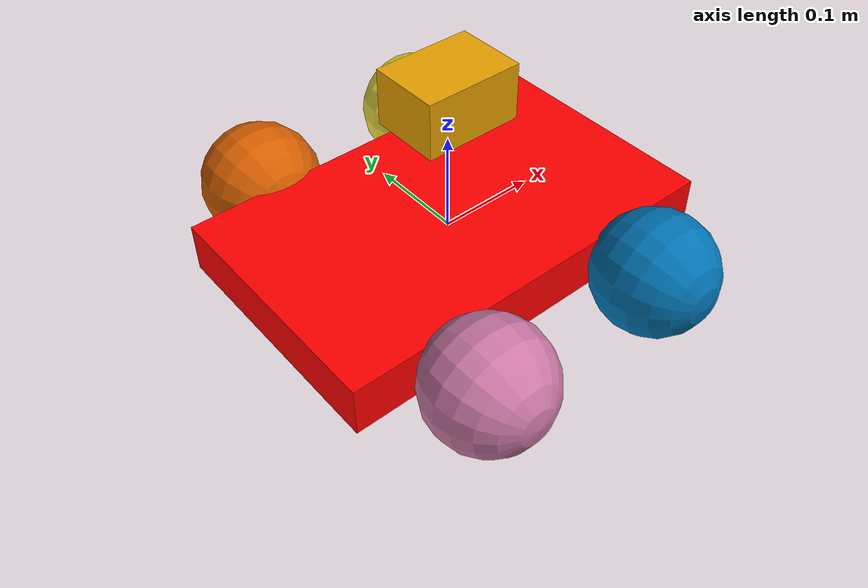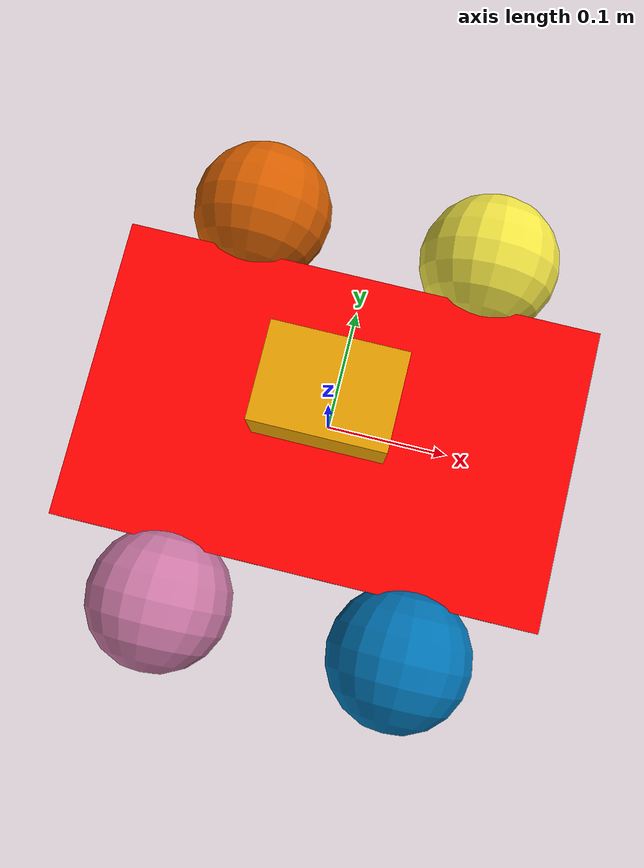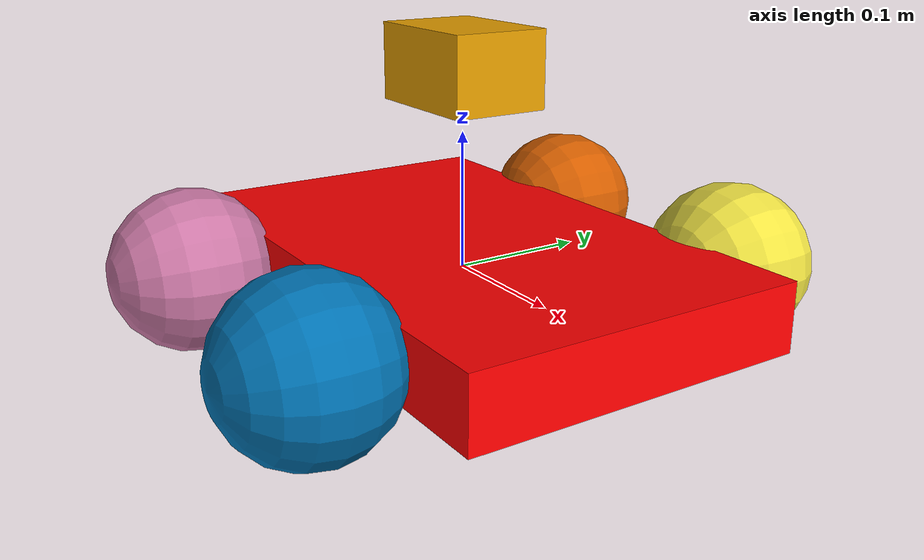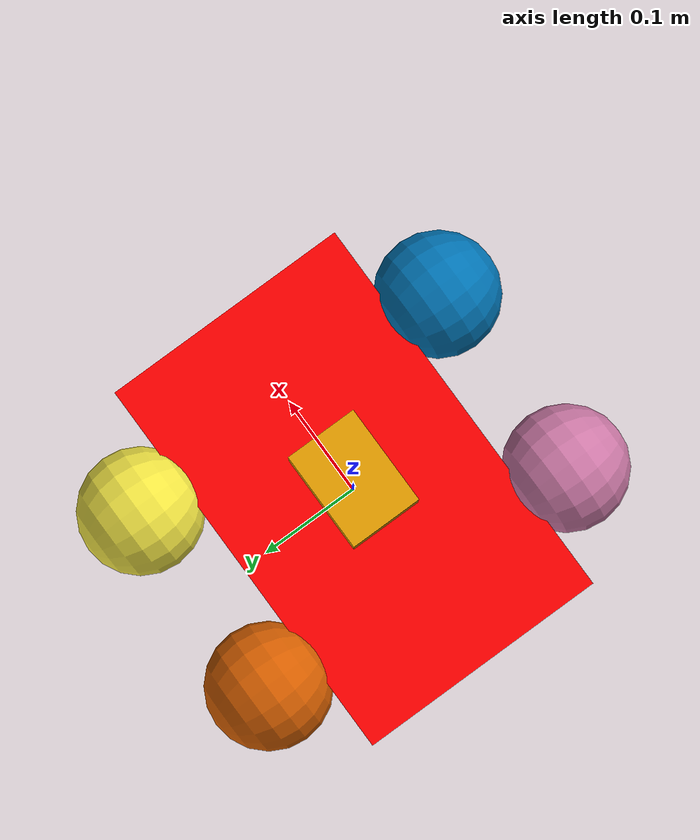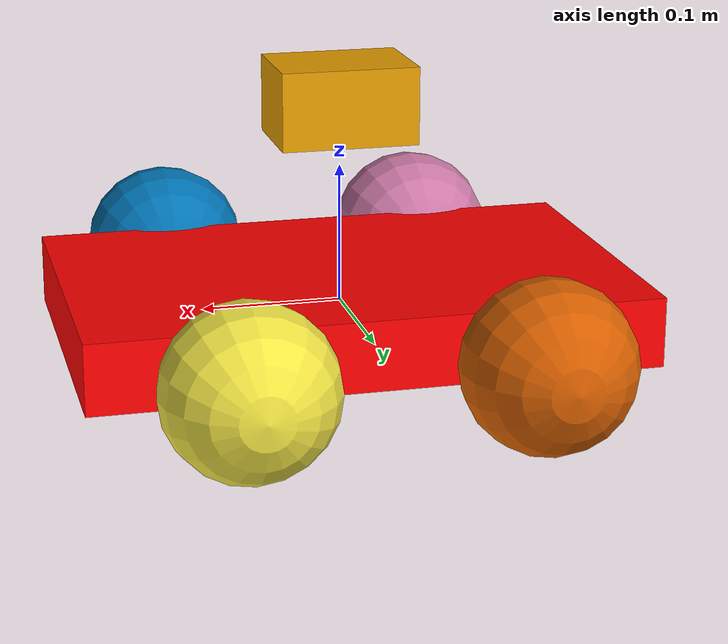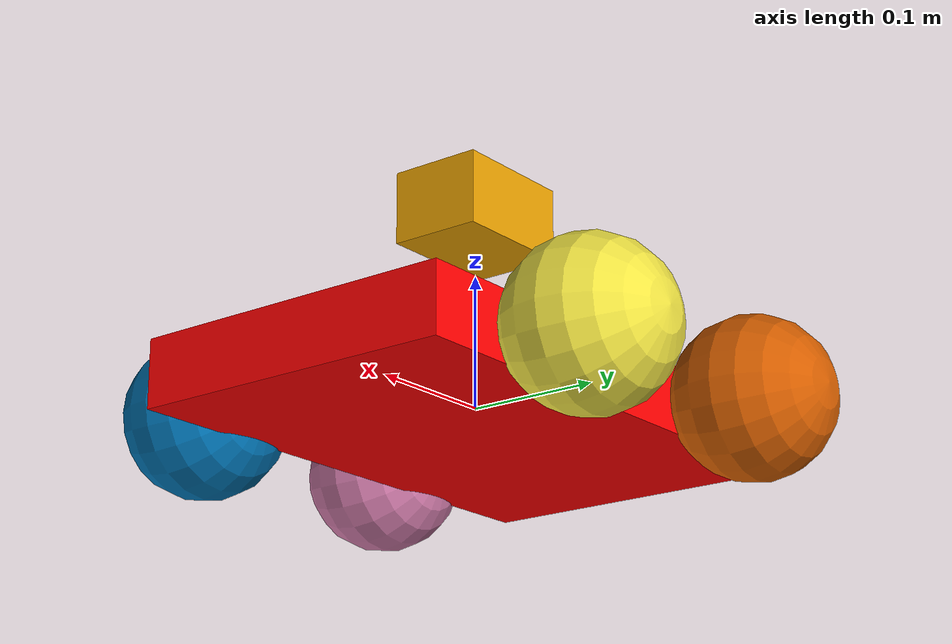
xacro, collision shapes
<?xml version="1.0"?>
<robot xmlns:xacro="http://ros.org/wiki/xacro" name="hibachi" >

    <!-- is_sim is true if we launch a Gazebo simulation
    and false if we are on real hardware -->
    <xacro:arg name="is_sim" default="true"/>

    <xacro:include filename="$(find hibachi_description)/urdf/hibachi_core.urdf.xacro" />

    <!-- Gazebo simulation  -->
    <xacro:if value="$(arg is_sim)">
        <!-- Use ros2_control -->
        <xacro:include filename="$(find hibachi_description)/urdf/hibachi_sim_ros2_control.urdf.xacro" />
        <xacro:include filename="$(find hibachi_description)/urdf/hibachi_sim_sensors.urdf.xacro" />
    </xacro:if>

    <!-- Hardware -->
    <xacro:unless value="$(arg is_sim)">
            <xacro:include filename="$(find hibachi_description)/urdf/ros2_control.urdf.xacro" />
    </xacro:unless>

</robot>

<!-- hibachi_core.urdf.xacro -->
<robot xmlns:xacro="http://www.ros.org/wiki/xacro">

    <xacro:include filename="$(find hibachi_description)/urdf/inertial_macros.xacro" />
    <xacro:include filename="$(find hibachi_description)/urdf/wheel.urdf.xacro" />

	<!--  Wheel distance between front and rear -->
	<xacro:property name="wheel_distance" value="0.2" />

	<!-- Wheel distance between left and right side -->
	<xacro:property name="wheel_separation" value="0.34" />

	<!-- Wheel properties -->
	<xacro:property name="wheel_mass" value="0.150" />
	<xacro:property name="wheel_radius" value="0.06" />
	<xacro:property name="wheel_width" value="0.06" />

	<!-- Chassis size -->
	<xacro:property name="chassis_x_size" value="0.40" />
	<xacro:property name="chassis_y_size" value="0.25" />
	<xacro:property name="chassis_z_size" value="0.05" />

	<!-- https://docs.ros.org/en/humble/Tutorials/Intermediate/URDF/Adding-Physical-and-Collision-Properties-to-a-URDF-Model.html -->

    <link name="base_link">

		<visual>
    		<origin xyz="0 0 0.0278" rpy="${(pi/2)} 0 ${-(pi/2)}"/>
			<geometry>
				<mesh filename="file://$(find hibachi_description)/meshes/hibachi_chassis.stl" scale="0.001 0.001 0.001" />
			</geometry>
			<material name="Red">
				<color rgba="${255/255} ${0/255} ${0/255} 1.0"/>
			</material>
		</visual>

		<collision>
			<origin xyz="0 0 0"/>
			<geometry>
				<box size="${chassis_x_size} ${chassis_y_size} ${chassis_z_size}"/>
			</geometry>
		</collision>
    </link>

	<!-- Base footprint is on the ground under the robot -->
    <link name="base_footprint">
		<xacro:dummy_inertial />
	</link>

    <joint name="base_footprint_joint" type="fixed">
        <origin xyz="0 0 ${-wheel_radius}" rpy="0 0 0" />
        <parent link="base_link" />
        <child link="base_footprint" />
    </joint>

	<!-- Interial link stores the robot's inertial information -->
    <link name="inertial_link">
		<xacro:inertial_box mass="2.0" x="${chassis_x_size}" y="${chassis_y_size}" z="${chassis_z_size}">
            <origin xyz="0 0 0" rpy="0 0 0"/>
        </xacro:inertial_box>
    </link>

    <joint name="inertial_joint" type="fixed">
        <origin xyz="0 0 0" rpy="0 0 0" />
        <parent link="base_link" />
        <child link="inertial_link" />
    </joint>

	<!-- Wheel macros -->
	<xacro:hibachi_wheel wheel_prefix="front_left">
		<origin xyz="${wheel_distance/2} ${wheel_separation/2} 0" rpy="0 0 0" />
	</xacro:hibachi_wheel>

	<xacro:hibachi_wheel wheel_prefix="front_right">
		<origin xyz="${wheel_distance/2} ${-wheel_separation/2} 0" rpy="0 0 0" />
	</xacro:hibachi_wheel>

	<xacro:hibachi_wheel wheel_prefix="rear_left">
		<origin xyz="${-wheel_distance/2} ${wheel_separation/2} 0" rpy="0 0 0" />
	</xacro:hibachi_wheel>

	<xacro:hibachi_wheel wheel_prefix="rear_right">
		<origin xyz="${-wheel_distance/2} ${-wheel_separation/2} 0" rpy="0 0 0" />
	</xacro:hibachi_wheel>

    <!-- Sensors -->

	<!-- MTI630 IMU -->
	<link name="xsens_imu_link">
		<xacro:dummy_inertial />
	</link>

	<joint name="xsens_imu_joint" type="fixed">
		<parent link="base_link" />
		<child link="xsens_imu_link" />
		<origin xyz="0 0 0.05" rpy="0 0 0" />
	</joint>

	<!-- RPLidar A1 -->
	<link name="rplidar_a1_link">
		<xacro:dummy_inertial />
		<collision>
			<origin xyz="0 0 0.0275" rpy="0 0 0"/>
			<geometry>
				<box size="0.0968 0.0703 0.0550"/>
			</geometry>
		</collision>
		<visual>
			<geometry>
				<mesh filename="file://$(find hibachi_description)/meshes/rplidar_a1.dae"  />
			</geometry>
		</visual>
	</link>

	<joint name="rplidar_joint" type="fixed">
		<parent link="base_link"/>
		<child link="rplidar_a1_link"/>
		<origin xyz="0 0 0.12" rpy="0 0 0"/>
	</joint>

	<link name="ardusimple_gps_link">
		<xacro:dummy_inertial />
	</link>

	<joint name="ardusimple_gps_joint" type="fixed">
		<parent link="base_link" />
		<child link="ardusimple_gps_link" />
		<origin xyz="0.0 -0.1 0.2" rpy="0 0 0" />
	</joint>

	<link name="m8n_gps_link">
		<xacro:dummy_inertial />
	</link>

	<joint name="m8n_gps_joint" type="fixed">
		<parent link="base_link" />
		<child link="m8n_gps_link" />
		<origin xyz="0.0 0.1 0.2" rpy="0 0 0" />
	</joint>

</robot>

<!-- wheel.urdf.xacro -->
<robot xmlns:xacro="http://ros.org/wiki/xacro">
    <xacro:macro name="hibachi_wheel" params="wheel_prefix *joint_pose">
        <xacro:property name="link_name" value="${wheel_prefix}_wheel_link" />
        <xacro:property name="joint_name" value="${wheel_prefix}_wheel_joint" />
        <xacro:property name="transmission_name" value="${wheel_prefix}_wheel_trans" />
        <xacro:property name="actuator_name" value="${wheel_prefix}_wheel_actuator" />

        <link name="${link_name}">
            <visual>
                <origin xyz="0 0 0" rpy="${pi/2} 0 0"/>
                <geometry>
                    <xacro:if value="${wheel_prefix == 'front_left'}">
                        <mesh filename="file://$(find hibachi_description)/meshes/tires-dagu-120mm-l.stl"/>
                    </xacro:if>
                    <xacro:if value="${wheel_prefix == 'front_right'}">
                        <mesh filename="file://$(find hibachi_description)/meshes/tires-dagu-120mm-r.stl"/>
                    </xacro:if>
                    <xacro:if value="${wheel_prefix == 'rear_left'}">
                        <mesh filename="file://$(find hibachi_description)/meshes/tires-dagu-120mm-l.stl"/>
                    </xacro:if>
                    <xacro:if value="${wheel_prefix == 'rear_right'}">
                        <mesh filename="file://$(find hibachi_description)/meshes/tires-dagu-120mm-r.stl"/>
                    </xacro:if>
                </geometry>
            </visual>
            <collision>
                <origin xyz="0 0 0" rpy="${pi/2} 0 0"/>
                <geometry>
                    <sphere radius="${wheel_radius}"/>
                </geometry>
            </collision>
            <xacro:inertial_cylinder mass="${wheel_mass}" length="${wheel_width}" radius="${wheel_radius}">
                <origin xyz="0 0 0" rpy="${pi/2} 0 0"/>
            </xacro:inertial_cylinder>

        </link>

        <gazebo reference="${link_name}">
            <visual>
                <material>
                    <ambient>0.175 0.175 0.175 1.0</ambient>
                    <diffuse>0.175 0.175 0.175 1.0</diffuse>
                    <specular>0.175 0.175 0.175 1.0</specular>
                </material>
            </visual>

        </gazebo>

        <joint name="${joint_name}" type="continuous">
            <parent link="base_link"/>
            <child link="${link_name}" />
            <xacro:insert_block name="joint_pose" />
            <axis xyz="0 1 0" rpy="0 0 0" />
        </joint>

    </xacro:macro>

</robot>
